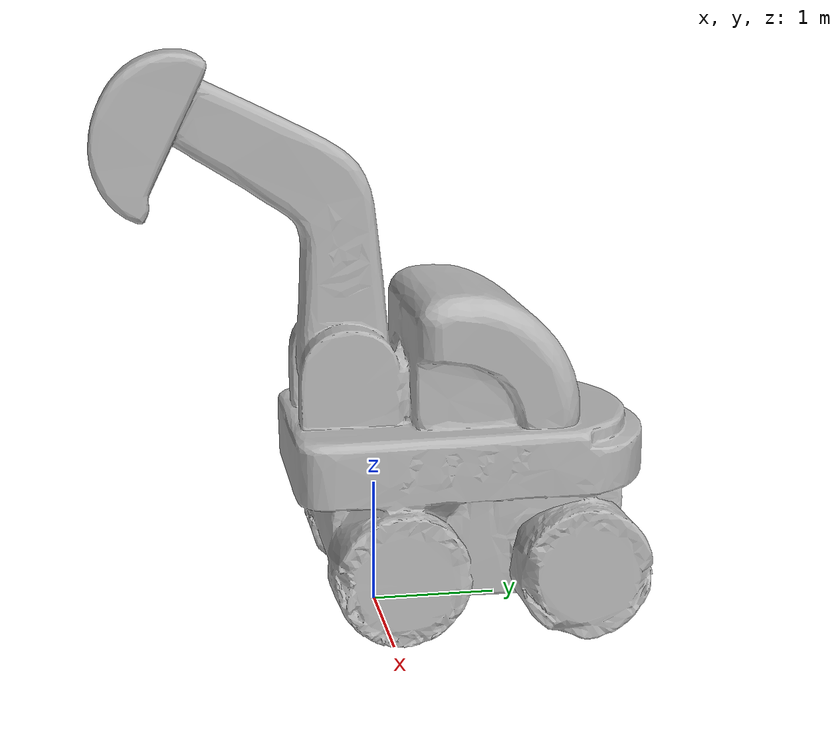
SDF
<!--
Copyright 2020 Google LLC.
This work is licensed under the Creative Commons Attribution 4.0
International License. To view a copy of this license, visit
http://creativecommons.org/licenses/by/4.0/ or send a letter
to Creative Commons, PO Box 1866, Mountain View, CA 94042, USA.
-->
<?xml version="1.0" ?>
<sdf version="1.6">
  <model name="MINI_EXCAVATOR">
    <static>true</static>
    <link name="link_0">
      <visual name="visual">
        <geometry>
          <mesh>
            <uri>meshes/model.obj</uri>
            <scale>26 26 26</scale>
          </mesh>
        </geometry>
      </visual>
      <collision name="collision_0">
        <geometry>
          <mesh>
            <uri>meshes/model.obj</uri>
            <scale>26 26 26</scale>
          </mesh>
        </geometry>
      </collision>
    </link>
  </model>
</sdf>
